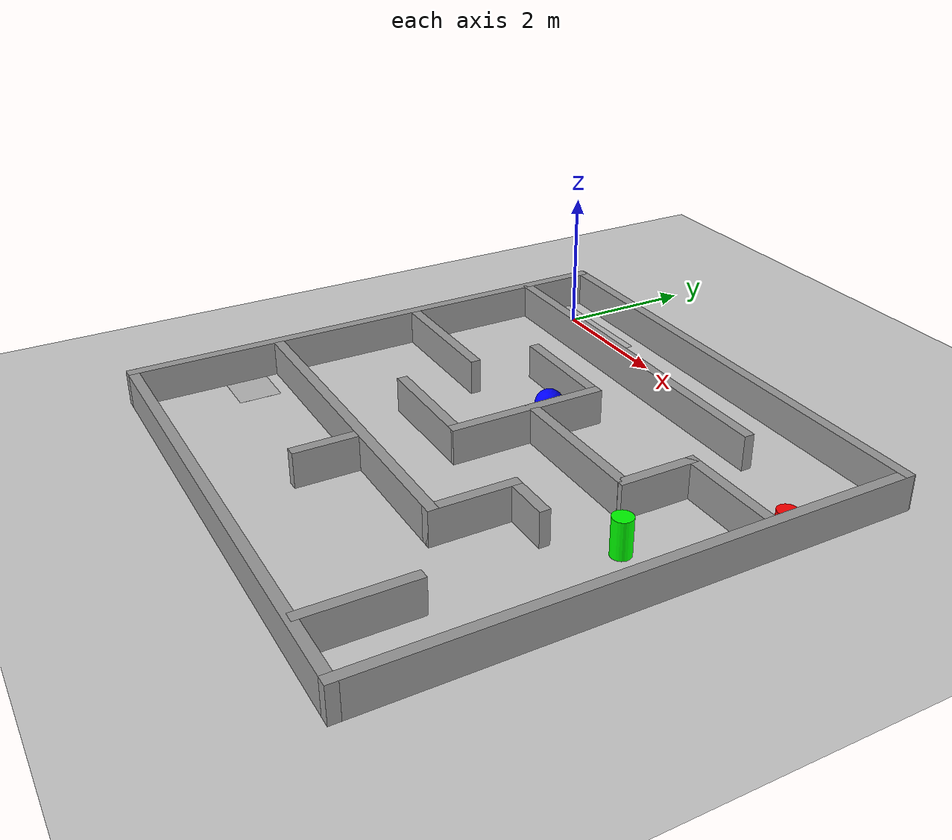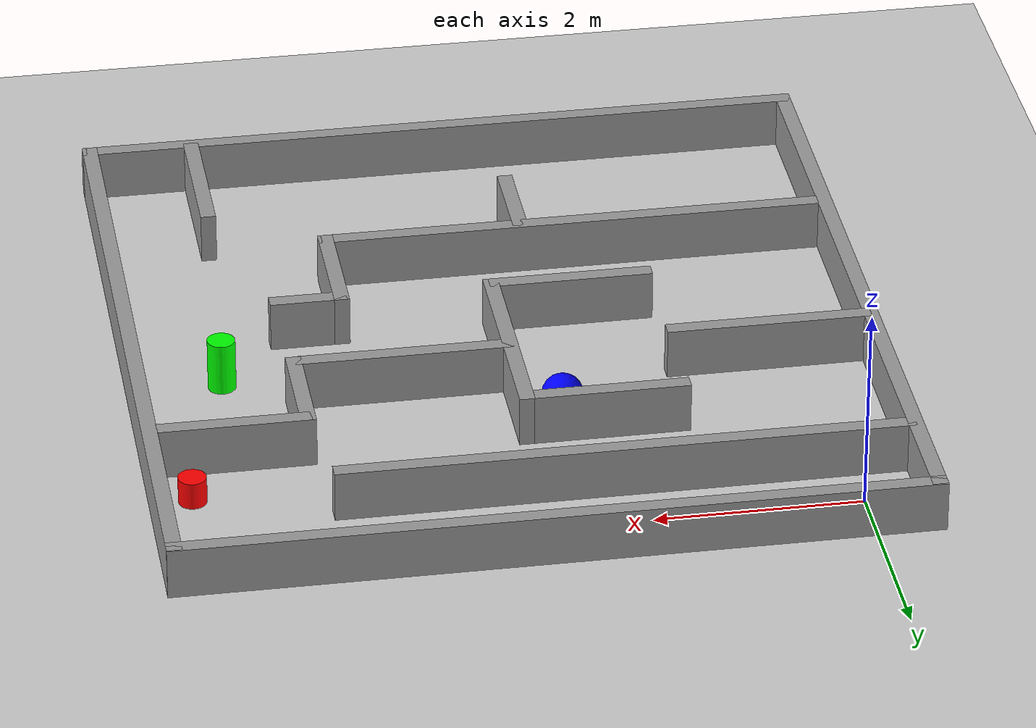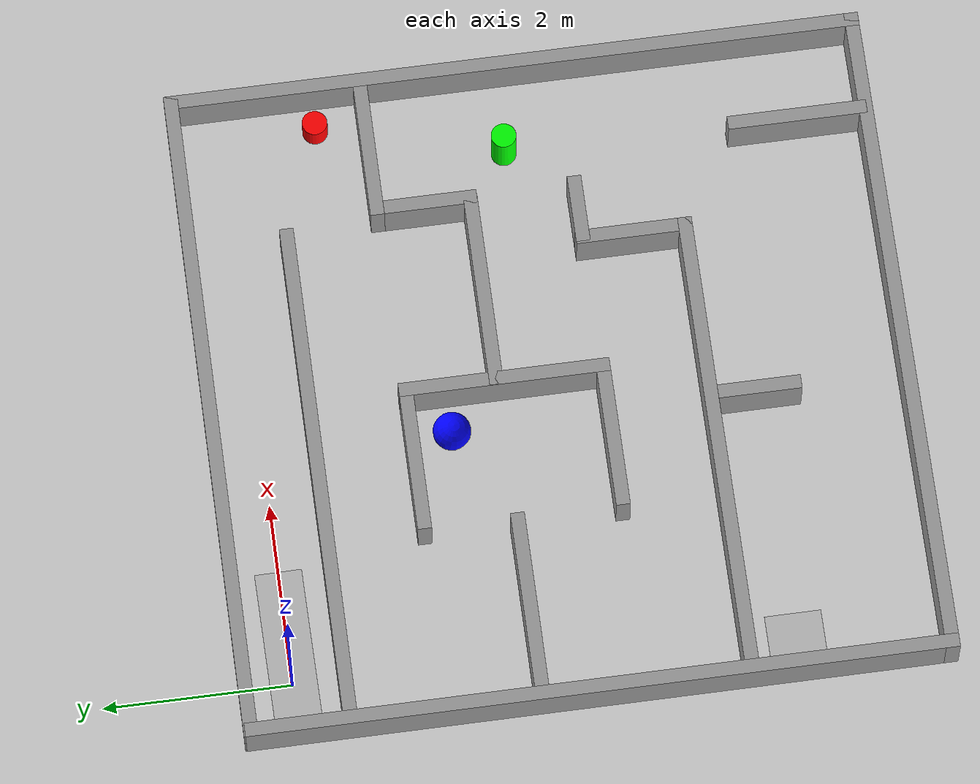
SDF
<sdf version="1.7">
 <world name="default">
  <light name="sun" type="directional">
   <pose>0 0 10 0 -0 0</pose>
   <diffuse>0.8 0.8 0.8 1</diffuse>
   <specular>0.2 0.2 0.2 1</specular>
   <attenuation>
    <range>1000</range>
    <constant>0.9</constant>
    <linear>0.01</linear>
    <quadratic>0.001</quadratic>
   </attenuation>
   <direction>-0.5 0.1 -0.9</direction>
   <spot><inner_angle>0</inner_angle><outer_angle>0</outer_angle><falloff>0</falloff></spot>
  </light>
  <model name="ground_plane">
   <static>1</static>
   <link name="link">
    <collision name="collision">
     <geometry><plane><normal>0 0 1</normal><size>100 100</size></plane></geometry>
     <surface>
      <contact><collide_bitmask>65535</collide_bitmask></contact>
      <friction><ode><mu>100</mu><mu2>50</mu2></ode></friction>
     </surface>
    </collision>
    <visual name="visual">
     <cast_shadows>0</cast_shadows>
     <geometry><plane><normal>0 0 1</normal><size>100 100</size></plane></geometry>
     <material>
      <script><uri>file://media/materials/scripts/gazebo.material</uri><name>Gazebo/Grey</name></script>
     </material>
    </visual>
   </link>
  </model>
  <gravity>0 0 -9.8</gravity>
  <magnetic_field>6e-06 2.3e-05 -4.2e-05</magnetic_field>
  <atmosphere type="adiabatic"/>
  <physics name="default_physics" default="0" type="ode">
   <max_step_size>0.001</max_step_size>
   <real_time_factor>1</real_time_factor>
   <real_time_update_rate>1000</real_time_update_rate>
  </physics>
  <scene><ambient>0.4 0.4 0.4 1</ambient><background>0.7 0.7 0.7 1</background><shadows>1</shadows></scene>
  <audio><device>default</device></audio>
  <spherical_coordinates>
   <surface_model>EARTH_WGS84</surface_model>
   <latitude_deg>0</latitude_deg>
   <longitude_deg>0</longitude_deg>
   <elevation>0</elevation>
   <heading_deg>0</heading_deg>
  </spherical_coordinates>
  <model name="raceff">
   <link name="Wall_0">
    <pose>0 -3.68256 0 0 -0 0</pose>
    <visual name="Wall_0_Visual">
     <pose>0 0 0.25 0 -0 0</pose>
     <geometry><box><size>7.25 0.15 0.5</size></box></geometry>
     <material>
      <script><uri>file://media/materials/scripts/gazebo.material</uri><name>Gazebo/Grey</name></script>
      <ambient>1 1 1 1</ambient>
     </material>
     <meta><layer>0</layer></meta>
    </visual>
    <collision name="Wall_0_Collision">
     <pose>0 0 0.25 0 -0 0</pose>
     <geometry><box><size>7.25 0.15 0.5</size></box></geometry>
     <surface>
      <friction>
       <ode><mu>1</mu><mu2>1</mu2><fdir1>0 0 0</fdir1><slip1>0</slip1><slip2>0</slip2></ode>
       <torsional>
        <coefficient>1</coefficient>
        <patch_radius>0</patch_radius>
        <surface_radius>0</surface_radius>
        <use_patch_radius>1</use_patch_radius>
        <ode><slip>0</slip></ode>
       </torsional>
      </friction>
      <bounce><restitution_coefficient>0</restitution_coefficient><threshold>1e+06</threshold></bounce>
      <contact>
       <collide_without_contact>0</collide_without_contact>
       <collide_without_contact_bitmask>1</collide_without_contact_bitmask>
       <collide_bitmask>1</collide_bitmask>
       <ode>
        <soft_cfm>0</soft_cfm>
        <soft_erp>0.2</soft_erp>
        <kp>1e+13</kp>
        <kd>1</kd>
        <max_vel>0.01</max_vel>
        <min_depth>0</min_depth>
       </ode>
       <bullet>
        <split_impulse>1</split_impulse>
        <split_impulse_penetration_threshold>-0.01</split_impulse_penetration_threshold>
        <soft_cfm>0</soft_cfm>
        <soft_erp>0.2</soft_erp>
        <kp>1e+13</kp>
        <kd>1</kd>
       </bullet>
      </contact>
     </surface>
    </collision>
   </link>
   <link name="Wall_13">
    <pose>3.55 -0.007561 0 0 0 -1.5708</pose>
    <visual name="Wall_13_Visual">
     <pose>0 0 0.25 0 -0 0</pose>
     <geometry><box><size>7.5 0.15 0.5</size></box></geometry>
     <material>
      <script><uri>file://media/materials/scripts/gazebo.material</uri><name>Gazebo/Grey</name></script>
      <ambient>1 1 1 1</ambient>
     </material>
     <meta><layer>0</layer></meta>
    </visual>
    <collision name="Wall_13_Collision">
     <pose>0 0 0.25 0 -0 0</pose>
     <geometry><box><size>7.5 0.15 0.5</size></box></geometry>
     <surface>
      <friction>
       <ode><mu>1</mu><mu2>1</mu2><fdir1>0 0 0</fdir1><slip1>0</slip1><slip2>0</slip2></ode>
       <torsional>
        <coefficient>1</coefficient>
        <patch_radius>0</patch_radius>
        <surface_radius>0</surface_radius>
        <use_patch_radius>1</use_patch_radius>
        <ode><slip>0</slip></ode>
       </torsional>
      </friction>
      <bounce><restitution_coefficient>0</restitution_coefficient><threshold>1e+06</threshold></bounce>
      <contact>
       <collide_without_contact>0</collide_without_contact>
       <collide_without_contact_bitmask>1</collide_without_contact_bitmask>
       <collide_bitmask>1</collide_bitmask>
       <ode>
        <soft_cfm>0</soft_cfm>
        <soft_erp>0.2</soft_erp>
        <kp>1e+13</kp>
        <kd>1</kd>
        <max_vel>0.01</max_vel>
        <min_depth>0</min_depth>
       </ode>
       <bullet>
        <split_impulse>1</split_impulse>
        <split_impulse_penetration_threshold>-0.01</split_impulse_penetration_threshold>
        <soft_cfm>0</soft_cfm>
        <soft_erp>0.2</soft_erp>
        <kp>1e+13</kp>
        <kd>1</kd>
       </bullet>
      </contact>
     </surface>
    </collision>
   </link>
   <link name="Wall_16">
    <pose>-0.803754 2.63593 0 0 -0 0</pose>
    <visual name="Wall_16_Visual">
     <pose>0 0 0.25 0 -0 0</pose>
     <geometry><box><size>5.5 0.15 0.5</size></box></geometry>
     <material>
      <script><uri>file://media/materials/scripts/gazebo.material</uri><name>Gazebo/Grey</name></script>
      <ambient>1 1 1 1</ambient>
     </material>
     <meta><layer>0</layer></meta>
    </visual>
    <collision name="Wall_16_Collision">
     <pose>0 0 0.25 0 -0 0</pose>
     <geometry><box><size>5.5 0.15 0.5</size></box></geometry>
     <surface>
      <friction>
       <ode><mu>1</mu><mu2>1</mu2><fdir1>0 0 0</fdir1><slip1>0</slip1><slip2>0</slip2></ode>
       <torsional>
        <coefficient>1</coefficient>
        <patch_radius>0</patch_radius>
        <surface_radius>0</surface_radius>
        <use_patch_radius>1</use_patch_radius>
        <ode><slip>0</slip></ode>
       </torsional>
      </friction>
      <bounce><restitution_coefficient>0</restitution_coefficient><threshold>1e+06</threshold></bounce>
      <contact>
       <collide_without_contact>0</collide_without_contact>
       <collide_without_contact_bitmask>1</collide_without_contact_bitmask>
       <collide_bitmask>1</collide_bitmask>
       <ode>
        <soft_cfm>0</soft_cfm>
        <soft_erp>0.2</soft_erp>
        <kp>1e+13</kp>
        <kd>1</kd>
        <max_vel>0.01</max_vel>
        <min_depth>0</min_depth>
       </ode>
       <bullet>
        <split_impulse>1</split_impulse>
        <split_impulse_penetration_threshold>-0.01</split_impulse_penetration_threshold>
        <soft_cfm>0</soft_cfm>
        <soft_erp>0.2</soft_erp>
        <kp>1e+13</kp>
        <kd>1</kd>
       </bullet>
      </contact>
     </surface>
    </collision>
   </link>
   <link name="Wall_24">
    <pose>-1.117 1.60767 0 0 -0 0</pose>
    <inertial>
     <mass>1</mass>
     <inertia><ixx>1</ixx><ixy>0</ixy><ixz>0</ixz><iyy>1</iyy><iyz>0</iyz><izz>1</izz></inertia>
    </inertial>
    <visual name="Wall_24_Visual">
     <pose>0.27 0 0.25 0 -0 0</pose>
     <geometry><box><size>1.50561 0.15 0.5</size></box></geometry>
     <material>
      <script><uri>file://media/materials/scripts/gazebo.material</uri><name>Gazebo/Grey</name></script>
      <ambient>1 1 1 1</ambient>
      <shader type="vertex"><normal_map>__default__</normal_map></shader>
      <diffuse>0.7 0.7 0.7 1</diffuse>
      <specular>0.01 0.01 0.01 1</specular>
      <emissive>0 0 0 1</emissive>
     </material>
     <meta><layer>0</layer></meta>
    </visual>
    <collision name="Wall_24_Collision">
     <pose>0.27 0 0.25 0 -0 0</pose>
     <geometry><box><size>1.50561 0.15 0.5</size></box></geometry>
     <surface>
      <friction>
       <ode><mu>1</mu><mu2>1</mu2><fdir1>0 0 0</fdir1><slip1>0</slip1><slip2>0</slip2></ode>
       <torsional>
        <coefficient>1</coefficient>
        <patch_radius>0</patch_radius>
        <surface_radius>0</surface_radius>
        <use_patch_radius>1</use_patch_radius>
        <ode><slip>0</slip></ode>
       </torsional>
      </friction>
      <bounce><restitution_coefficient>0</restitution_coefficient><threshold>1e+06</threshold></bounce>
      <contact>
       <collide_without_contact>0</collide_without_contact>
       <collide_without_contact_bitmask>1</collide_without_contact_bitmask>
       <collide_bitmask>1</collide_bitmask>
       <ode>
        <soft_cfm>0</soft_cfm>
        <soft_erp>0.2</soft_erp>
        <kp>1e+13</kp>
        <kd>1</kd>
        <max_vel>0.01</max_vel>
        <min_depth>0</min_depth>
       </ode>
       <bullet>
        <split_impulse>1</split_impulse>
        <split_impulse_penetration_threshold>-0.01</split_impulse_penetration_threshold>
        <soft_cfm>0</soft_cfm>
        <soft_erp>0.2</soft_erp>
        <kp>1e+13</kp>
        <kd>1</kd>
       </bullet>
      </contact>
     </surface>
    </collision>
   </link>
   <link name="Wall_25">
    <pose>-0.029 0.557668 0 0 0 -1.5708</pose>
    <visual name="Wall_25_Visual">
     <pose>0 0 0.25 0 -0 0</pose>
     <geometry><box><size>2.25 0.15 0.5</size></box></geometry>
     <material>
      <script><uri>file://media/materials/scripts/gazebo.material</uri><name>Gazebo/Grey</name></script>
      <ambient>1 1 1 1</ambient>
     </material>
     <meta><layer>0</layer></meta>
    </visual>
    <collision name="Wall_25_Collision">
     <pose>0 0 0.25 0 -0 0</pose>
     <geometry><box><size>2.25 0.15 0.5</size></box></geometry>
     <surface>
      <friction>
       <ode><mu>1</mu><mu2>1</mu2><fdir1>0 0 0</fdir1><slip1>0</slip1><slip2>0</slip2></ode>
       <torsional>
        <coefficient>1</coefficient>
        <patch_radius>0</patch_radius>
        <surface_radius>0</surface_radius>
        <use_patch_radius>1</use_patch_radius>
        <ode><slip>0</slip></ode>
       </torsional>
      </friction>
      <bounce><restitution_coefficient>0</restitution_coefficient><threshold>1e+06</threshold></bounce>
      <contact>
       <collide_without_contact>0</collide_without_contact>
       <collide_without_contact_bitmask>1</collide_without_contact_bitmask>
       <collide_bitmask>1</collide_bitmask>
       <ode>
        <soft_cfm>0</soft_cfm>
        <soft_erp>0.2</soft_erp>
        <kp>1e+13</kp>
        <kd>1</kd>
        <max_vel>0.01</max_vel>
        <min_depth>0</min_depth>
       </ode>
       <bullet>
        <split_impulse>1</split_impulse>
        <split_impulse_penetration_threshold>-0.01</split_impulse_penetration_threshold>
        <soft_cfm>0</soft_cfm>
        <soft_erp>0.2</soft_erp>
        <kp>1e+13</kp>
        <kd>1</kd>
       </bullet>
      </contact>
     </surface>
    </collision>
   </link>
   <link name="Wall_26">
    <pose>-1.079 -0.492332 0 0 -0 3.14159</pose>
    <inertial>
     <mass>1</mass>
     <inertia><ixx>1</ixx><ixy>0</ixy><ixz>0</ixz><iyy>1</iyy><iyz>0</iyz><izz>1</izz></inertia>
    </inertial>
    <visual name="Wall_26_Visual">
     <pose>-0.27 0 0.25 0 -0 0</pose>
     <geometry><box><size>1.6 0.15 0.5</size></box></geometry>
     <material>
      <script><uri>file://media/materials/scripts/gazebo.material</uri><name>Gazebo/Grey</name></script>
      <ambient>1 1 1 1</ambient>
      <shader type="vertex"><normal_map>__default__</normal_map></shader>
      <diffuse>0.7 0.7 0.7 1</diffuse>
      <specular>0.01 0.01 0.01 1</specular>
      <emissive>0 0 0 1</emissive>
     </material>
     <meta><layer>0</layer></meta>
    </visual>
    <collision name="Wall_26_Collision">
     <pose>-0.27 0 0.25 0 -0 0</pose>
     <geometry><box><size>1.6 0.15 0.5</size></box></geometry>
     <surface>
      <friction>
       <ode><mu>1</mu><mu2>1</mu2><fdir1>0 0 0</fdir1><slip1>0</slip1><slip2>0</slip2></ode>
       <torsional>
        <coefficient>1</coefficient>
        <patch_radius>0</patch_radius>
        <surface_radius>0</surface_radius>
        <use_patch_radius>1</use_patch_radius>
        <ode><slip>0</slip></ode>
       </torsional>
      </friction>
      <bounce><restitution_coefficient>0</restitution_coefficient><threshold>1e+06</threshold></bounce>
      <contact>
       <collide_without_contact>0</collide_without_contact>
       <collide_without_contact_bitmask>1</collide_without_contact_bitmask>
       <collide_bitmask>1</collide_bitmask>
       <ode>
        <soft_cfm>0</soft_cfm>
        <soft_erp>0.2</soft_erp>
        <kp>1e+13</kp>
        <kd>1</kd>
        <max_vel>0.01</max_vel>
        <min_depth>0</min_depth>
       </ode>
       <bullet>
        <split_impulse>1</split_impulse>
        <split_impulse_penetration_threshold>-0.01</split_impulse_penetration_threshold>
        <soft_cfm>0</soft_cfm>
        <soft_erp>0.2</soft_erp>
        <kp>1e+13</kp>
        <kd>1</kd>
       </bullet>
      </contact>
     </surface>
    </collision>
   </link>
   <link name="Wall_32">
    <pose>-2.552 0.623668 0 0 -0 0</pose>
    <visual name="Wall_32_Visual">
     <pose>0 0 0.25 0 -0 0</pose>
     <geometry><box><size>2 0.15 0.5</size></box></geometry>
     <material>
      <script><uri>file://media/materials/scripts/gazebo.material</uri><name>Gazebo/Grey</name></script>
      <ambient>1 1 1 1</ambient>
     </material>
     <meta><layer>0</layer></meta>
    </visual>
    <collision name="Wall_32_Collision">
     <pose>0 0 0.25 0 -0 0</pose>
     <geometry><box><size>2 0.15 0.5</size></box></geometry>
     <surface>
      <friction>
       <ode><mu>1</mu><mu2>1</mu2><fdir1>0 0 0</fdir1><slip1>0</slip1><slip2>0</slip2></ode>
       <torsional>
        <coefficient>1</coefficient>
        <patch_radius>0</patch_radius>
        <surface_radius>0</surface_radius>
        <use_patch_radius>1</use_patch_radius>
        <ode><slip>0</slip></ode>
       </torsional>
      </friction>
      <bounce><restitution_coefficient>0</restitution_coefficient><threshold>1e+06</threshold></bounce>
      <contact>
       <collide_without_contact>0</collide_without_contact>
       <collide_without_contact_bitmask>1</collide_without_contact_bitmask>
       <collide_bitmask>1</collide_bitmask>
       <ode>
        <soft_cfm>0</soft_cfm>
        <soft_erp>0.2</soft_erp>
        <kp>1e+13</kp>
        <kd>1</kd>
        <max_vel>0.01</max_vel>
        <min_depth>0</min_depth>
       </ode>
       <bullet>
        <split_impulse>1</split_impulse>
        <split_impulse_penetration_threshold>-0.01</split_impulse_penetration_threshold>
        <soft_cfm>0</soft_cfm>
        <soft_erp>0.2</soft_erp>
        <kp>1e+13</kp>
        <kd>1</kd>
       </bullet>
      </contact>
     </surface>
    </collision>
   </link>
   <link name="Wall_36">
    <pose>2.729 1.65167 0 0 -0 3.14159</pose>
    <visual name="Wall_36_Visual">
     <pose>0 0 0.25 0 -0 0</pose>
     <geometry><box><size>1.5 0.15 0.5</size></box></geometry>
     <material>
      <script><uri>file://media/materials/scripts/gazebo.material</uri><name>Gazebo/Grey</name></script>
      <ambient>1 1 1 1</ambient>
     </material>
     <meta><layer>0</layer></meta>
    </visual>
    <collision name="Wall_36_Collision">
     <pose>0 0 0.25 0 -0 0</pose>
     <geometry><box><size>1.5 0.15 0.5</size></box></geometry>
     <surface>
      <friction>
       <ode><mu>1</mu><mu2>1</mu2><fdir1>0 0 0</fdir1><slip1>0</slip1><slip2>0</slip2></ode>
       <torsional>
        <coefficient>1</coefficient>
        <patch_radius>0</patch_radius>
        <surface_radius>0</surface_radius>
        <use_patch_radius>1</use_patch_radius>
        <ode><slip>0</slip></ode>
       </torsional>
      </friction>
      <bounce><restitution_coefficient>0</restitution_coefficient><threshold>1e+06</threshold></bounce>
      <contact>
       <collide_without_contact>0</collide_without_contact>
       <collide_without_contact_bitmask>1</collide_without_contact_bitmask>
       <collide_bitmask>1</collide_bitmask>
       <ode>
        <soft_cfm>0</soft_cfm>
        <soft_erp>0.2</soft_erp>
        <kp>1e+13</kp>
        <kd>1</kd>
        <max_vel>0.01</max_vel>
        <min_depth>0</min_depth>
       </ode>
       <bullet>
        <split_impulse>1</split_impulse>
        <split_impulse_penetration_threshold>-0.01</split_impulse_penetration_threshold>
        <soft_cfm>0</soft_cfm>
        <soft_erp>0.2</soft_erp>
        <kp>1e+13</kp>
        <kd>1</kd>
       </bullet>
      </contact>
     </surface>
    </collision>
   </link>
   <link name="Wall_44">
    <pose>0.977 0.647668 0 0 -0 3.14159</pose>
    <visual name="Wall_44_Visual">
     <pose>0 0 0.25 0 -0 0</pose>
     <geometry><box><size>2.15 0.15 0.5</size></box></geometry>
     <material>
      <script><uri>file://media/materials/scripts/gazebo.material</uri><name>Gazebo/Grey</name></script>
      <ambient>1 1 1 1</ambient>
     </material>
     <meta><layer>0</layer></meta>
    </visual>
    <collision name="Wall_44_Collision">
     <pose>0 0 0.25 0 -0 0</pose>
     <geometry><box><size>2.15 0.15 0.5</size></box></geometry>
     <surface>
      <friction>
       <ode><mu>1</mu><mu2>1</mu2><fdir1>0 0 0</fdir1><slip1>0</slip1><slip2>0</slip2></ode>
       <torsional>
        <coefficient>1</coefficient>
        <patch_radius>0</patch_radius>
        <surface_radius>0</surface_radius>
        <use_patch_radius>1</use_patch_radius>
        <ode><slip>0</slip></ode>
       </torsional>
      </friction>
      <bounce><restitution_coefficient>0</restitution_coefficient><threshold>1e+06</threshold></bounce>
      <contact>
       <collide_without_contact>0</collide_without_contact>
       <collide_without_contact_bitmask>1</collide_without_contact_bitmask>
       <collide_bitmask>1</collide_bitmask>
       <ode>
        <soft_cfm>0</soft_cfm>
        <soft_erp>0.2</soft_erp>
        <kp>1e+13</kp>
        <kd>1</kd>
        <max_vel>0.01</max_vel>
        <min_depth>0</min_depth>
       </ode>
       <bullet>
        <split_impulse>1</split_impulse>
        <split_impulse_penetration_threshold>-0.01</split_impulse_penetration_threshold>
        <soft_cfm>0</soft_cfm>
        <soft_erp>0.2</soft_erp>
        <kp>1e+13</kp>
        <kd>1</kd>
       </bullet>
      </contact>
     </surface>
    </collision>
   </link>
   <link name="Wall_47">
    <pose>2.054 1.15167 0 0 0 -1.5708</pose>
    <visual name="Wall_47_Visual">
     <pose>0 0 0.25 0 -0 0</pose>
     <geometry><box><size>1.15 0.15 0.5</size></box></geometry>
     <material>
      <script><uri>file://media/materials/scripts/gazebo.material</uri><name>Gazebo/Grey</name></script>
      <ambient>1 1 1 1</ambient>
     </material>
     <meta><layer>0</layer></meta>
    </visual>
    <collision name="Wall_47_Collision">
     <pose>0 0 0.25 0 -0 0</pose>
     <geometry><box><size>1.15 0.15 0.5</size></box></geometry>
     <surface>
      <friction>
       <ode><mu>1</mu><mu2>1</mu2><fdir1>0 0 0</fdir1><slip1>0</slip1><slip2>0</slip2></ode>
       <torsional>
        <coefficient>1</coefficient>
        <patch_radius>0</patch_radius>
        <surface_radius>0</surface_radius>
        <use_patch_radius>1</use_patch_radius>
        <ode><slip>0</slip></ode>
       </torsional>
      </friction>
      <bounce><restitution_coefficient>0</restitution_coefficient><threshold>1e+06</threshold></bounce>
      <contact>
       <collide_without_contact>0</collide_without_contact>
       <collide_without_contact_bitmask>1</collide_without_contact_bitmask>
       <collide_bitmask>1</collide_bitmask>
       <ode>
        <soft_cfm>0</soft_cfm>
        <soft_erp>0.2</soft_erp>
        <kp>1e+13</kp>
        <kd>1</kd>
        <max_vel>0.01</max_vel>
        <min_depth>0</min_depth>
       </ode>
       <bullet>
        <split_impulse>1</split_impulse>
        <split_impulse_penetration_threshold>-0.01</split_impulse_penetration_threshold>
        <soft_cfm>0</soft_cfm>
        <soft_erp>0.2</soft_erp>
        <kp>1e+13</kp>
        <kd>1</kd>
       </bullet>
      </contact>
     </surface>
    </collision>
   </link>
   <link name="Wall_53">
    <pose>-0.981 -1.57933 0 0 -0 0</pose>
    <visual name="Wall_53_Visual">
     <pose>0 0 0.25 0 -0 0</pose>
     <geometry><box><size>5 0.15 0.5</size></box></geometry>
     <material>
      <script><uri>file://media/materials/scripts/gazebo.material</uri><name>Gazebo/Grey</name></script>
      <ambient>1 1 1 1</ambient>
     </material>
     <meta><layer>0</layer></meta>
    </visual>
    <collision name="Wall_53_Collision">
     <pose>0 0 0.25 0 -0 0</pose>
     <geometry><box><size>5 0.15 0.5</size></box></geometry>
     <surface>
      <friction>
       <ode><mu>1</mu><mu2>1</mu2><fdir1>0 0 0</fdir1><slip1>0</slip1><slip2>0</slip2></ode>
       <torsional>
        <coefficient>1</coefficient>
        <patch_radius>0</patch_radius>
        <surface_radius>0</surface_radius>
        <use_patch_radius>1</use_patch_radius>
        <ode><slip>0</slip></ode>
       </torsional>
      </friction>
      <bounce><restitution_coefficient>0</restitution_coefficient><threshold>1e+06</threshold></bounce>
      <contact>
       <collide_without_contact>0</collide_without_contact>
       <collide_without_contact_bitmask>1</collide_without_contact_bitmask>
       <collide_bitmask>1</collide_bitmask>
       <ode>
        <soft_cfm>0</soft_cfm>
        <soft_erp>0.2</soft_erp>
        <kp>1e+13</kp>
        <kd>1</kd>
        <max_vel>0.01</max_vel>
        <min_depth>0</min_depth>
       </ode>
       <bullet>
        <split_impulse>1</split_impulse>
        <split_impulse_penetration_threshold>-0.01</split_impulse_penetration_threshold>
        <soft_cfm>0</soft_cfm>
        <soft_erp>0.2</soft_erp>
        <kp>1e+13</kp>
        <kd>1</kd>
       </bullet>
      </contact>
     </surface>
    </collision>
   </link>
   <link name="Wall_56">
    <pose>1.444 -1.02933 0 0 -0 1.5708</pose>
    <visual name="Wall_56_Visual">
     <pose>0 0 0.25 0 -0 0</pose>
     <geometry><box><size>1.25 0.15 0.5</size></box></geometry>
     <material>
      <script><uri>file://media/materials/scripts/gazebo.material</uri><name>Gazebo/Grey</name></script>
      <ambient>1 1 1 1</ambient>
     </material>
     <meta><layer>0</layer></meta>
    </visual>
    <collision name="Wall_56_Collision">
     <pose>0 0 0.25 0 -0 0</pose>
     <geometry><box><size>1.25 0.15 0.5</size></box></geometry>
     <surface>
      <friction>
       <ode><mu>1</mu><mu2>1</mu2><fdir1>0 0 0</fdir1><slip1>0</slip1><slip2>0</slip2></ode>
       <torsional>
        <coefficient>1</coefficient>
        <patch_radius>0</patch_radius>
        <surface_radius>0</surface_radius>
        <use_patch_radius>1</use_patch_radius>
        <ode><slip>0</slip></ode>
       </torsional>
      </friction>
      <bounce><restitution_coefficient>0</restitution_coefficient><threshold>1e+06</threshold></bounce>
      <contact>
       <collide_without_contact>0</collide_without_contact>
       <collide_without_contact_bitmask>1</collide_without_contact_bitmask>
       <collide_bitmask>1</collide_bitmask>
       <ode>
        <soft_cfm>0</soft_cfm>
        <soft_erp>0.2</soft_erp>
        <kp>1e+13</kp>
        <kd>1</kd>
        <max_vel>0.01</max_vel>
        <min_depth>0</min_depth>
       </ode>
       <bullet>
        <split_impulse>1</split_impulse>
        <split_impulse_penetration_threshold>-0.01</split_impulse_penetration_threshold>
        <soft_cfm>0</soft_cfm>
        <soft_erp>0.2</soft_erp>
        <kp>1e+13</kp>
        <kd>1</kd>
       </bullet>
      </contact>
     </surface>
    </collision>
   </link>
   <link name="Wall_57">
    <pose>1.619 -0.479332 0 0 -0 0</pose>
    <inertial>
     <mass>1</mass>
     <inertia><ixx>1</ixx><ixy>0</ixy><ixz>0</ixz><iyy>1</iyy><iyz>0</iyz><izz>1</izz></inertia>
    </inertial>
    <visual name="Wall_57_Visual">
     <pose>0.15 0 0.25 0 -0 0</pose>
     <geometry><box><size>0.75 0.15 0.5</size></box></geometry>
     <material>
      <script><uri>file://media/materials/scripts/gazebo.material</uri><name>Gazebo/Grey</name></script>
      <ambient>1 1 1 1</ambient>
      <shader type="vertex"><normal_map>__default__</normal_map></shader>
      <diffuse>0.7 0.7 0.7 1</diffuse>
      <specular>0.01 0.01 0.01 1</specular>
      <emissive>0 0 0 1</emissive>
     </material>
     <meta><layer>0</layer></meta>
    </visual>
    <collision name="Wall_57_Collision">
     <pose>0.15 0 0.25 0 -0 0</pose>
     <geometry><box><size>0.75 0.15 0.5</size></box></geometry>
     <surface>
      <friction>
       <ode><mu>1</mu><mu2>1</mu2><fdir1>0 0 0</fdir1><slip1>0</slip1><slip2>0</slip2></ode>
       <torsional>
        <coefficient>1</coefficient>
        <patch_radius>0</patch_radius>
        <surface_radius>0</surface_radius>
        <use_patch_radius>1</use_patch_radius>
        <ode><slip>0</slip></ode>
       </torsional>
      </friction>
      <bounce><restitution_coefficient>0</restitution_coefficient><threshold>1e+06</threshold></bounce>
      <contact>
       <collide_without_contact>0</collide_without_contact>
       <collide_without_contact_bitmask>1</collide_without_contact_bitmask>
       <collide_bitmask>1</collide_bitmask>
       <ode>
        <soft_cfm>0</soft_cfm>
        <soft_erp>0.2</soft_erp>
        <kp>1e+13</kp>
        <kd>1</kd>
        <max_vel>0.01</max_vel>
        <min_depth>0</min_depth>
       </ode>
       <bullet>
        <split_impulse>1</split_impulse>
        <split_impulse_penetration_threshold>-0.01</split_impulse_penetration_threshold>
        <soft_cfm>0</soft_cfm>
        <soft_erp>0.2</soft_erp>
        <kp>1e+13</kp>
        <kd>1</kd>
       </bullet>
      </contact>
     </surface>
    </collision>
   </link>
   <link name="Wall_6">
    <pose>-3.55 -0.007561 0 0 -0 1.5708</pose>
    <visual name="Wall_6_Visual">
     <pose>0 0 0.25 0 -0 0</pose>
     <geometry><box><size>7.5 0.15 0.5</size></box></geometry>
     <material>
      <script><uri>file://media/materials/scripts/gazebo.material</uri><name>Gazebo/Grey</name></script>
      <ambient>1 1 1 1</ambient>
     </material>
     <meta><layer>0</layer></meta>
    </visual>
    <collision name="Wall_6_Collision">
     <pose>0 0 0.25 0 -0 0</pose>
     <geometry><box><size>7.5 0.15 0.5</size></box></geometry>
     <surface>
      <friction>
       <ode><mu>1</mu><mu2>1</mu2><fdir1>0 0 0</fdir1><slip1>0</slip1><slip2>0</slip2></ode>
       <torsional>
        <coefficient>1</coefficient>
        <patch_radius>0</patch_radius>
        <surface_radius>0</surface_radius>
        <use_patch_radius>1</use_patch_radius>
        <ode><slip>0</slip></ode>
       </torsional>
      </friction>
      <bounce><restitution_coefficient>0</restitution_coefficient><threshold>1e+06</threshold></bounce>
      <contact>
       <collide_without_contact>0</collide_without_contact>
       <collide_without_contact_bitmask>1</collide_without_contact_bitmask>
       <collide_bitmask>1</collide_bitmask>
       <ode>
        <soft_cfm>0</soft_cfm>
        <soft_erp>0.2</soft_erp>
        <kp>1e+13</kp>
        <kd>1</kd>
        <max_vel>0.01</max_vel>
        <min_depth>0</min_depth>
       </ode>
       <bullet>
        <split_impulse>1</split_impulse>
        <split_impulse_penetration_threshold>-0.01</split_impulse_penetration_threshold>
        <soft_cfm>0</soft_cfm>
        <soft_erp>0.2</soft_erp>
        <kp>1e+13</kp>
        <kd>1</kd>
       </bullet>
      </contact>
     </surface>
    </collision>
   </link>
   <link name="Wall_8">
    <pose>0 3.68256 0 0 -0 0</pose>
    <visual name="Wall_8_Visual">
     <pose>0 0 0.25 0 -0 0</pose>
     <geometry><box><size>7.25 0.15 0.5</size></box></geometry>
     <material>
      <script><uri>file://media/materials/scripts/gazebo.material</uri><name>Gazebo/Grey</name></script>
      <ambient>1 1 1 1</ambient>
     </material>
     <meta><layer>0</layer></meta>
    </visual>
    <collision name="Wall_8_Collision">
     <pose>0 0 0.25 0 -0 0</pose>
     <geometry><box><size>7.25 0.15 0.5</size></box></geometry>
     <surface>
      <friction>
       <ode><mu>1</mu><mu2>1</mu2><fdir1>0 0 0</fdir1><slip1>0</slip1><slip2>0</slip2></ode>
       <torsional>
        <coefficient>1</coefficient>
        <patch_radius>0</patch_radius>
        <surface_radius>0</surface_radius>
        <use_patch_radius>1</use_patch_radius>
        <ode><slip>0</slip></ode>
       </torsional>
      </friction>
      <bounce><restitution_coefficient>0</restitution_coefficient><threshold>1e+06</threshold></bounce>
      <contact>
       <collide_without_contact>0</collide_without_contact>
       <collide_without_contact_bitmask>1</collide_without_contact_bitmask>
       <collide_bitmask>1</collide_bitmask>
       <ode>
        <soft_cfm>0</soft_cfm>
        <soft_erp>0.2</soft_erp>
        <kp>1e+13</kp>
        <kd>1</kd>
        <max_vel>0.01</max_vel>
        <min_depth>0</min_depth>
       </ode>
       <bullet>
        <split_impulse>1</split_impulse>
        <split_impulse_penetration_threshold>-0.01</split_impulse_penetration_threshold>
        <soft_cfm>0</soft_cfm>
        <soft_erp>0.2</soft_erp>
        <kp>1e+13</kp>
        <kd>1</kd>
       </bullet>
      </contact>
     </surface>
    </collision>
   </link>
   <static>1</static>
   <pose>2.9706 -3.18013 0 0 -0 0</pose>
  </model>
  <model name="racetest_plus">
   <pose>3.99187 -5.79794 0 0 -0 0</pose>
   <link name="Wall_1">
    <collision name="Wall_1_Collision">
     <geometry><box><size>1.5 0.15 0.5</size></box></geometry>
     <pose>0 0 0.25 0 -0 0</pose>
    </collision>
    <visual name="Wall_1_Visual">
     <pose>0 0 0.25 0 -0 0</pose>
     <geometry><box><size>1.5 0.15 0.5</size></box></geometry>
     <material>
      <script><uri>file://media/materials/scripts/gazebo.material</uri><name>Gazebo/Grey</name></script>
      <ambient>1 1 1 1</ambient>
     </material>
     <meta><layer>0</layer></meta>
    </visual>
    <pose>1.51 -0.325 0 0 -0 -1.5708</pose>
   </link>
   <link name="Wall_6">
    <collision name="Wall_6_Collision">
     <geometry><box><size>1 0.15 0.5</size></box></geometry>
     <pose>0 0 0.25 0 -0 0</pose>
    </collision>
    <visual name="Wall_6_Visual">
     <pose>0 0 0.25 0 -0 0</pose>
     <geometry><box><size>1 0.15 0.5</size></box></geometry>
     <material>
      <script><uri>file://media/materials/scripts/gazebo.material</uri><name>Gazebo/Grey</name></script>
      <ambient>1 1 1 1</ambient>
     </material>
     <meta><layer>0</layer></meta>
    </visual>
    <pose>-1.51 0.575 0 0 -0 1.5708</pose>
   </link>
   <static>1</static>
  </model>
  <model name="start_plane">
   <static>1</static>
   <link name="link">
    <collision name="collision">
     <geometry><plane><normal>0 0 1</normal><size>0.5 1.8</size></plane></geometry>
     <surface><friction><ode><mu>100</mu><mu2>50</mu2></ode></friction></surface>
    </collision>
    <visual name="visual">
     <cast_shadows>0</cast_shadows>
     <geometry><plane><normal>0 0 1</normal><size>0.5 1.8</size></plane></geometry>
     <material>
      <script>
       <uri>model://start_plane/materials/scripts</uri>
       <uri>model://start_plane/materials/textures/</uri>
       <name>StartPlane/Image</name>
      </script>
     </material>
    </visual>
   </link>
   <pose>0.365307 -0.005 0 0 0 -1.56</pose>
  </model>
  <model name="end_plane">
   <static>1</static>
   <link name="link">
    <collision name="collision">
     <geometry><plane><normal>0 0 1</normal><size>0.6 0.6</size></plane></geometry>
     <surface><friction><ode><mu>100</mu><mu2>50</mu2></ode></friction></surface>
    </collision>
    <visual name="visual">
     <cast_shadows>0</cast_shadows>
     <geometry><plane><normal>0 0 1</normal><size>0.6 0.6</size></plane></geometry>
     <material>
      <script>
       <uri>model://end_plane/materials/scripts</uri>
       <uri>model://end_plane/materials/textures/</uri>
       <name>EndPlane/Image</name>
      </script>
     </material>
    </visual>
   </link>
   <pose>-0.202 -5.296 0 0 0 -1.57</pose>
  </model>
  <model name="unit_cylinder">
   <pose>6.18056 -1.00056 0.134781 2e-06 1e-06 0</pose>
   <link name="link">
    <inertial>
     <mass>1</mass>
     <inertia><ixx>0.145833</ixx><ixy>0</ixy><ixz>0</ixz><iyy>0.145833</iyy><iyz>0</iyz><izz>0.125</izz></inertia>
    </inertial>
    <collision name="collision">
     <geometry><cylinder><radius>0.135603</radius><length>0.269578</length></cylinder></geometry>
    </collision>
    <visual name="visual">
     <geometry><cylinder><radius>0.135603</radius><length>0.269578</length></cylinder></geometry>
     <material>
      <script><name>Gazebo/Grey</name><uri>file://media/materials/scripts/gazebo.material</uri></script>
      <ambient>1 0 0 1</ambient>
      <diffuse>1 0 0 1</diffuse>
      <specular>0.1 0.1 0.1 1</specular>
      <emissive>0 0 0 1</emissive>
     </material>
    </visual>
   </link>
  </model>
  <model name="unit_sphere">
   <pose>2.51724 -2.00817 0.203521 0.111259 -0.069275 0.103655</pose>
   <link name="link">
    <inertial>
     <mass>1</mass>
     <inertia><ixx>0.1</ixx><ixy>0</ixy><ixz>0</ixz><iyy>0.1</iyy><iyz>0</iyz><izz>0.1</izz></inertia>
    </inertial>
    <collision name="collision"><geometry><sphere><radius>0.20353</radius></sphere></geometry></collision>
    <visual name="visual">
     <geometry><sphere><radius>0.20353</radius></sphere></geometry>
     <material>
      <script><name>Gazebo/Grey</name><uri>file://media/materials/scripts/gazebo.material</uri></script>
      <ambient>0 0 1 1</ambient>
      <diffuse>0 0 1 1</diffuse>
      <specular>0.1 0.1 0.1 1</specular>
      <emissive>0 0 0 1</emissive>
     </material>
    </visual>
   </link>
  </model>
  <model name="unit_cylinder_0">
   <pose>5.66499 -2.97777 0.261607 0 -0 2e-06</pose>
   <link name="link">
    <inertial>
     <mass>1</mass>
     <inertia><ixx>0.145833</ixx><ixy>0</ixy><ixz>0</ixz><iyy>0.145833</iyy><iyz>0</iyz><izz>0.125</izz></inertia>
    </inertial>
    <collision name="collision">
     <geometry><cylinder><radius>0.135988</radius><length>0.523232</length></cylinder></geometry>
    </collision>
    <visual name="visual">
     <geometry><cylinder><radius>0.135988</radius><length>0.523232</length></cylinder></geometry>
     <material>
      <script><name>Gazebo/Grey</name><uri>file://media/materials/scripts/gazebo.material</uri></script>
      <ambient>0 1 0 1</ambient>
      <diffuse>0 1 0 1</diffuse>
      <specular>0.1 0.1 0.1 1</specular>
      <emissive>0 0 0 1</emissive>
     </material>
    </visual>
   </link>
  </model>
 </world>
</sdf>
